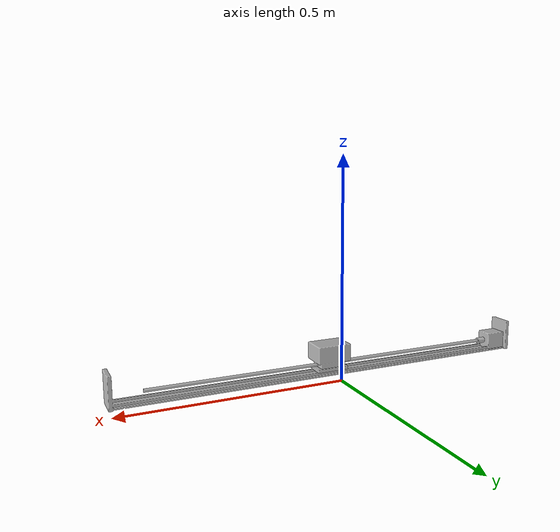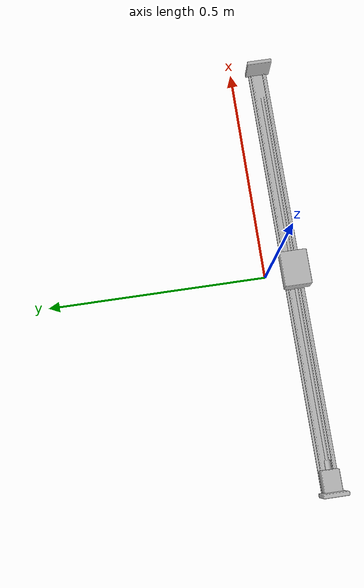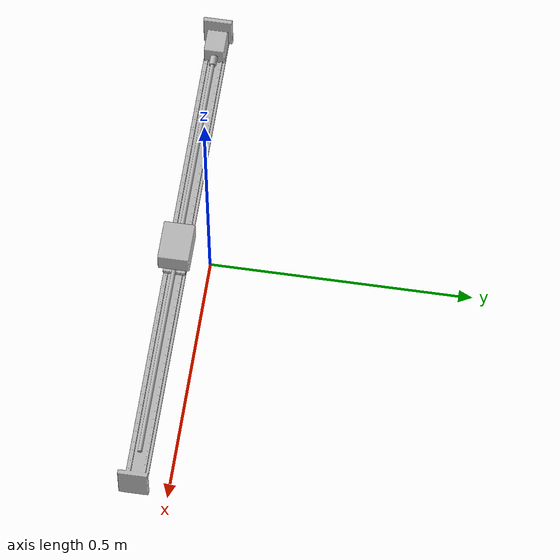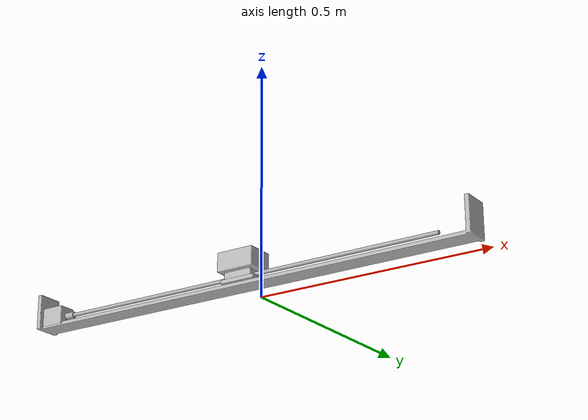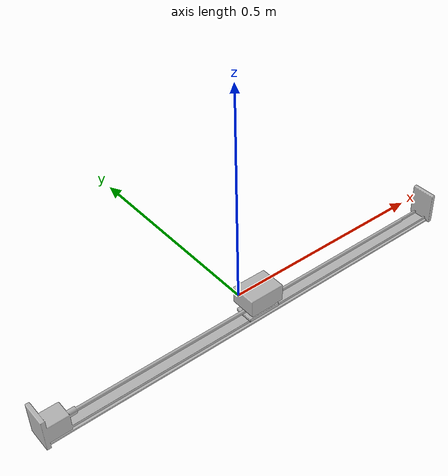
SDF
<?xml version="1.0"?>
<!-- generated by blender/scripts/export_gazebo.py -->
<sdf version="1.10">
  <model name="rail_axis">
    <static>false</static>

    <link name="rail_base">
      <inertial>
        <pose>0.000000 -0.063000 0.036500 0 0 0</pose>
        <mass>6.0000</mass>
        <inertia>
          <ixx>0.00423250</ixx><ixy>0</ixy><ixz>0</ixz>
          <iyy>0.50266450</iyy><iyz>0</iyz>
          <izz>0.50156800</izz>
        </inertia>
      </inertial>
      <collision name="collision">
        <pose>0.000000 -0.063000 0.036500 0 0 0</pose>
        <geometry>
          <box><size>1.000000 0.056000 0.073000</size></box>
        </geometry>
      </collision>
      <visual name="visual">
        <geometry>
          <mesh><uri>model://linear_rail/meshes/linear_rail.obj</uri></mesh>
        </geometry>
      </visual>
    </link>

    <link name="carriage">
      <pose>0 -0.063 0 0 0 0</pose>
      <inertial>
        <pose>0.000000 0.000000 0.041000 0 0 0</pose>
        <mass>0.8000</mass>
        <inertia>
          <ixx>0.00049627</ixx><ixy>0</ixy><ixz>0</ixz>
          <iyy>0.00068293</iyy><iyz>0</iyz>
          <izz>0.00066667</izz>
        </inertia>
      </inertial>
      <collision name="collision">
        <pose>0.000000 0.000000 0.041000 0 0 0</pose>
        <geometry>
          <box><size>0.080000 0.060000 0.062000</size></box>
        </geometry>
      </collision>
      <visual name="visual">
        <geometry>
          <mesh><uri>model://rail_carriage/meshes/rail_carriage.obj</uri></mesh>
        </geometry>
      </visual>
    </link>

    <joint name="world_fixed" type="fixed">
      <parent>world</parent>
      <child>rail_base</child>
    </joint>

    <joint name="carriage_slide" type="prismatic">
      <parent>rail_base</parent>
      <child>carriage</child>
      <axis>
        <xyz>1 0 0</xyz>
        <limit>
          <lower>-0.4200</lower>
          <upper>0.4200</upper>
          <effort>60</effort>
          <velocity>0.25</velocity>
        </limit>
        <dynamics><damping>4.0</damping><friction>1.0</friction></dynamics>
      </axis>
    </joint>

    <plugin filename="gz-sim-joint-position-controller-system"
            name="gz::sim::systems::JointPositionController">
      <joint_name>carriage_slide</joint_name>
      <topic>/rail_axis/carriage_slide/cmd_pos</topic>
      <p_gain>800</p_gain>
      <i_gain>10</i_gain>
      <d_gain>60</d_gain>
      <cmd_max>60</cmd_max>
      <cmd_min>-60</cmd_min>
    </plugin>

    <!-- explicit topic so it does not carry the world name, and one
         ros_gz_bridge config serves every layout variant -->
    <plugin filename="gz-sim-joint-state-publisher-system"
            name="gz::sim::systems::JointStatePublisher">
      <joint_name>carriage_slide</joint_name>
      <topic>/rail_axis/joint_state</topic>
    </plugin>
  </model>
</sdf>
